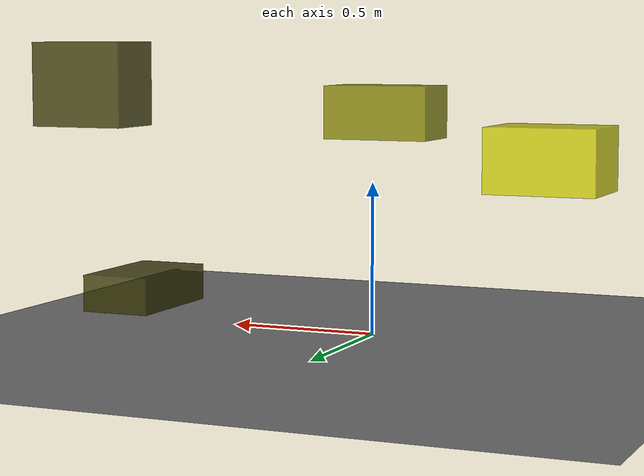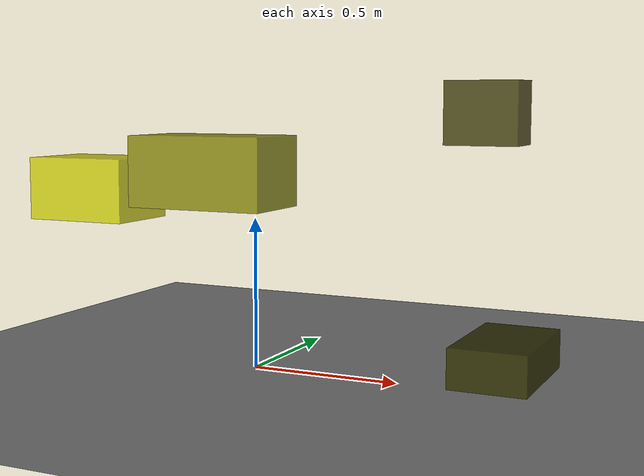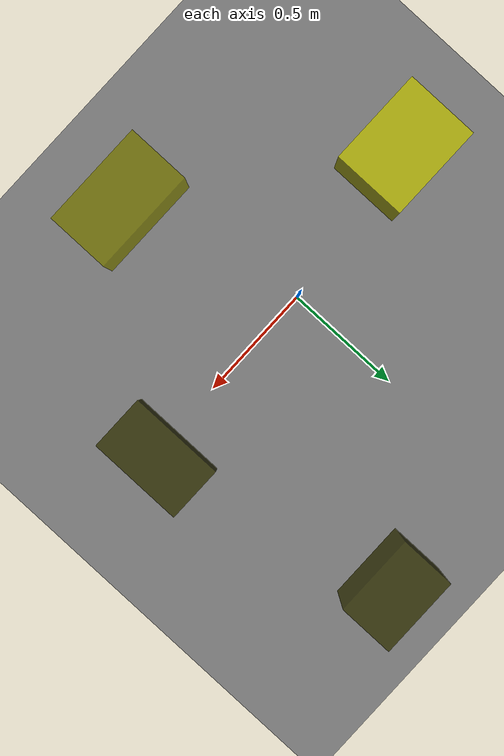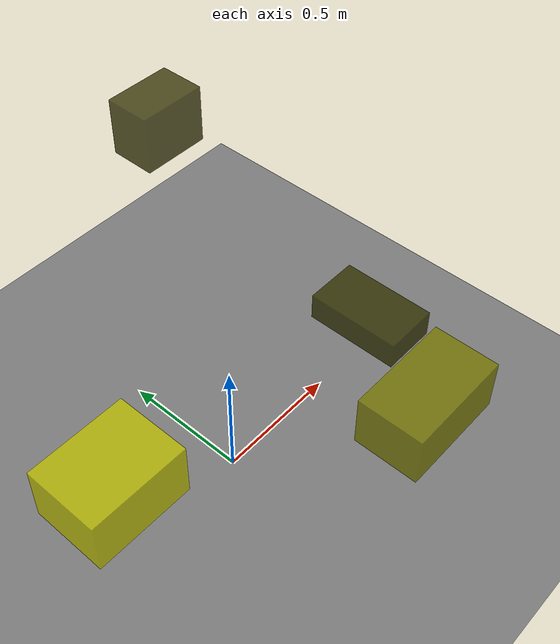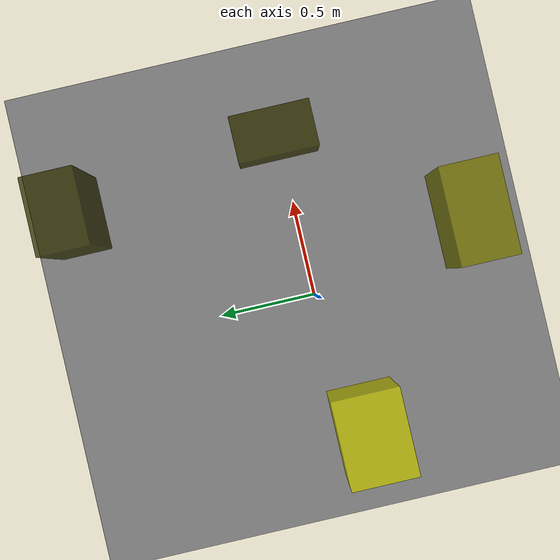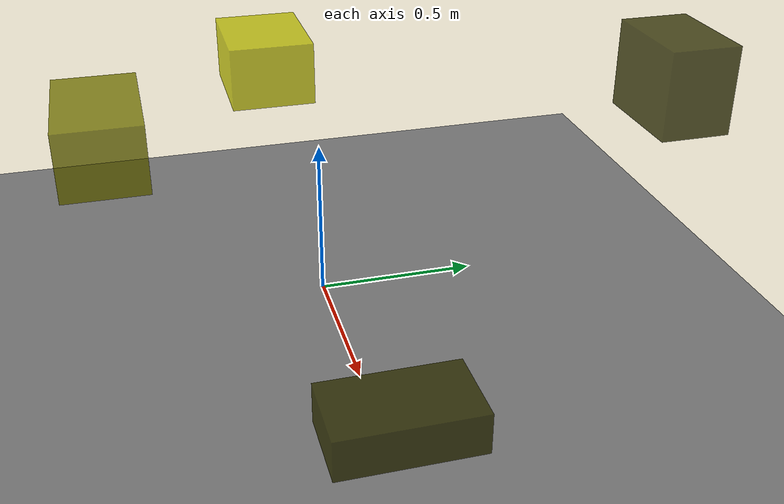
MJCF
<?xml version="1.0"?>
<mujoco model="obstacle_scene">
  <compiler angle="radian" coordinate="local"/>
  <option timestep="0.001" gravity="0 0 -9.81"/>

  <asset>
    <material name="obstacle_mat" rgba="0.8 0.8 0.0 0.8"/>
    <material name="ground_mat" rgba="0.5 0.5 0.5 1"/>
  </asset>

  <worldbody>
    <!-- Ground plane -->
    <geom name="ground" type="plane" size="3 3 0.1" material="ground_mat"/>

    <!-- Obstacles -->
    <body name="obstacle_0" pos="0.529345 0.861782 0.839364">
      <geom name="obs_0" type="box" size="0.141414 0.095490 0.121067" rgba="0.2 0.2 0.0 0.8"/>
    </body>
    <body name="obstacle_1" pos="0.205327 -0.633458 0.700309">
      <geom name="obs_1" type="box" size="0.194772 0.115367 0.096021" rgba="0.5 0.5 0.0 0.8"/>
    </body>
    <body name="obstacle_2" pos="-0.578219 -0.067587 0.588268">
      <geom name="obs_2" type="box" size="0.181831 0.139678 0.105123" rgba="0.8 0.8 0.0 0.8"/>
    </body>
    <body name="obstacle_3" pos="0.839659 0.022553 0.111783">
      <geom name="obs_3" type="box" size="0.119517 0.205056 0.061748" rgba="0.2 0.2 0.0 0.8"/>
    </body>
  </worldbody>
</mujoco>
